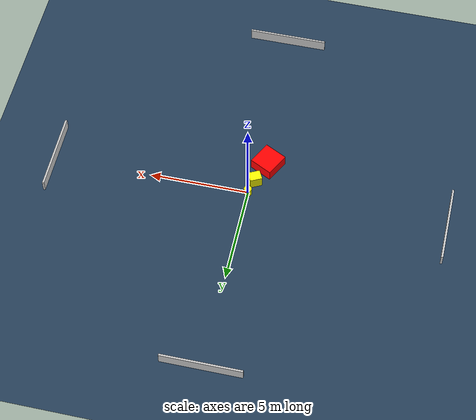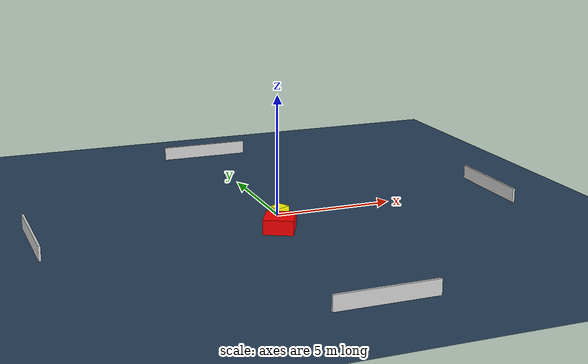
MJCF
<?xml version="1.0" ?>
<mujoco model="generated_environment">
  <option timestep="0.01" integrator="RK4" cone="elliptic"/>
  <default>
    <geom density="1"/>
  </default>
  <asset>
    <texture builtin="gradient" height="3072" name="skybox" rgb1="0.3 0.5 0.7" rgb2="0 0 0" type="skybox" width="512"/>
    <texture builtin="checker" height="300" name="groundplane" rgb1="0.2 0.3 0.4" rgb2="0.1 0.2 0.3" type="2d" width="300"/>
    <material name="groundplane" reflectance="0.2" texrepeat="5 5" texture="groundplane"/>
  </asset>
  <worldbody>
    <light dir="0 0 -1" directional="true" pos="0 0 1.5"/>
    <geom condim="3" friction="0.5 0.005 0.001" material="groundplane" name="floor" pos="0 0 0" size="0 0 0.05" type="plane"/>
    <body name="walls">
      <geom name="wall_1" condim="4" pos="-10.0 0.0 0.3" rgba="0.800000011920929 0.800000011920929 0.800000011920929 1.0" size="0.05 2.0 0.3" type="box"/>
      <geom name="wall_2" condim="4" pos="10.0 0.0 0.3" rgba="0.800000011920929 0.800000011920929 0.800000011920929 1.0" size="0.05 2.0 0.3" type="box"/>
      <geom name="wall_3" condim="4" pos="0.0 -10.0 0.3" rgba="0.800000011920929 0.800000011920929 0.800000011920929 1.0" size="2.0 0.05 0.3" type="box"/>
      <geom name="wall_4" condim="4" pos="0.0 10.0 0.3" rgba="0.800000011920929 0.800000011920929 0.800000011920929 1.0" size="2.0 0.05 0.3" type="box"/>
    </body>
    <body name="robot">
      <joint name="joint_x" type="slide" pos="0 0 0" axis="1 0 0"/>
      <joint name="joint_y" type="slide" pos="0 0 0" axis="0 1 0"/>
      <geom name="robot" type="cylinder" pos="0.0 0.0 0.2" size="0.2 0.2 0.0" mass="5.0" friction="1.0 0.005 0.0001" condim="4" rgba="1.0 1.0 0.0 1.0"/>
    </body>
    <body name="obstacle_1_movable">
      <geom name="obstacle_1_movable" condim="4" pos="-0.20467099640290023 -0.706257923580346 0.3" euler="0 0 117.19304112175065" friction="0.0 0.005 0.001" rgba="1.0 1.0 0.0 1.0" size="0.2551907508681625 0.3104185189807862 0.3" type="box" mass="0.1"/>
      <joint type="free"/>
    </body>
    <body name="obstacle_2_static">
      <geom name="obstacle_2_static" condim="4" pos="-0.6353609119400793 -1.873055190895293 0.3" euler="0 0 62.91074396105583" friction="0.0 0.005 0.001" rgba="1.0 0.0 0.0 1.0" size="0.6240346041025198 0.6017393538068054 0.3" type="box"/>
    </body>
  </worldbody>
  <actuator>
    <motor name="actuator_x" joint="joint_x" gear="1" ctrlrange="-1 1"/>
    <motor name="actuator_y" joint="joint_y" gear="1" ctrlrange="-1 1"/>
  </actuator>
</mujoco>
